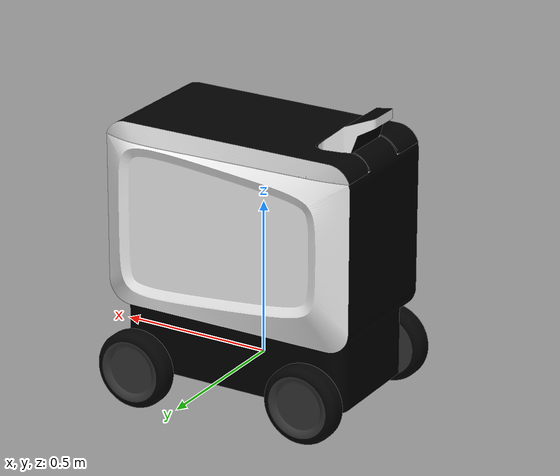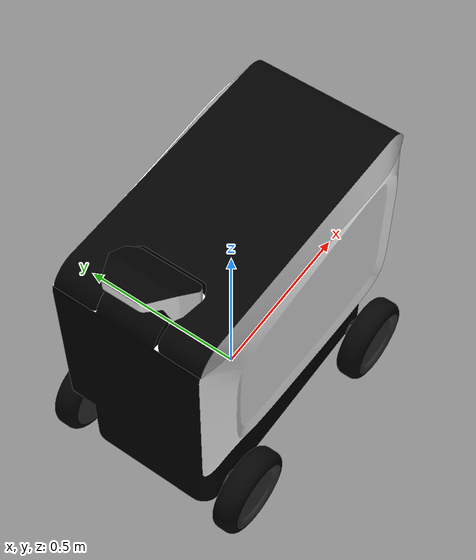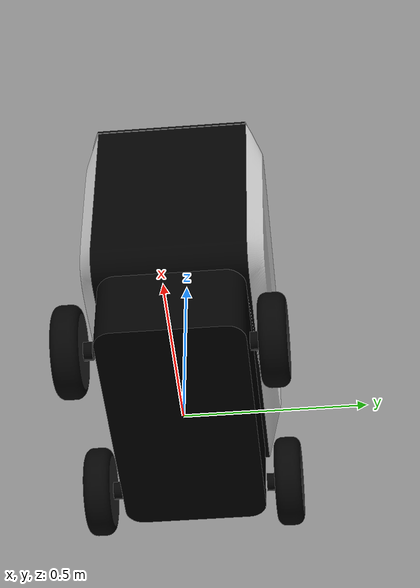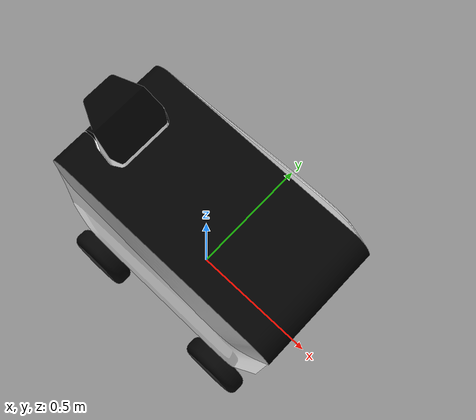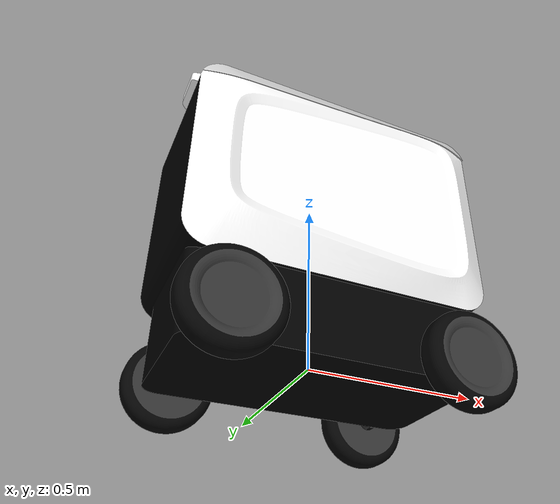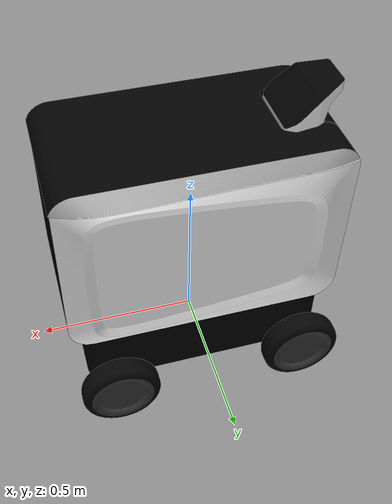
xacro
<?xml version="1.0"?>
<robot name="steer_bot" xmlns:xacro="http://wiki.ros.org/xacro">
  <!-- Include xacro for inertials, materials and wheels -->
  <xacro:include filename="$(find deliverybot_description)/urdf/wheel.xacro"/>

  <xacro:property name="robot_namespace" value="/steer_bot"/>

  <!-- Gazebo plugins -->
  <gazebo>
    <!-- Load ros_control plugin using the steer_bot_hardware_gazebo
    implementation of the hardware_interface::RobotHW -->
    <plugin name="gazebo_ros_control" filename="libgazebo_ros_control.so">
      <robotNamespace>${robot_namespace}</robotNamespace>
      <robotSimType>steer_bot_hardware_gazebo/SteerBotHardwareGazebo</robotSimType>
      <legacyModeNS>false</legacyModeNS>
    </plugin>
  </gazebo>

  <!-- Math constants -->
  <xacro:property name="deg_to_rad" value="0.01745329251994329577"/>

  <!-- Robot base dimensions -->
  <xacro:property name="base_length" value="0.85" />
  <xacro:property name="base_width" value="0.30" />
  <xacro:property name="base_height" value="0.75" />
  <xacro:property name="base_mass" value="72.3" />

  <!-- Wheel link dimensions -->
  <xacro:property name="wheel_radius" value="0.125" />
  <xacro:property name="wheel_thickness" value="0.1" />
  <xacro:property name="wheel_mass" value="3.5" />

  <!-- Steering link dimensions -->
  <xacro:property name="steer_radius" value="0.05" />
  <xacro:property name="steer_thickness" value="0.02" />
  <xacro:property name="steer_mass" value="1" />

  <!-- Axle positions -->
  <xacro:property name="axle_offset" value="0.125" />
  <xacro:property name="steer_offset" value="-0.15" />

  <!-- Base link -->
    <link name="base_link">
      <visual>
        <origin xyz="0 0 0.40" rpy="0 0 -1.57"/>
        <geometry>
          <mesh filename="package://deliverybot_description/models/EVA_Body.dae"/>
        </geometry>
      </visual>
      <collision>
        <origin xyz="0 0 0.40" rpy="0 0 -1.57"/>
        <geometry>
          <mesh filename="package://deliverybot_description/models/EVA_Body.dae"/>
        </geometry>
      </collision>
      <inertial>
        <origin xyz="0 0 0" rpy="0 0 0" />
        <mass value="64.3" />
        <inertia ixx="8.303" ixy="0" ixz="0" iyy="5.468" iyz="0.075" izz="6.02" />
      </inertial>
    </link>
  <!-- Front steer and rear wheel joints required for ackermann_steering_controller -->
    <xacro:front_steer
      name="front"
      parent="base"
      steer_radius="${steer_radius}"
      steer_thickness="${steer_thickness}"
      steer_mass="${steer_mass}"
      base_length="${base_length}"
      base_width="${base_width}"
      axle_offset="${axle_offset}"
      steer_height="${wheel_radius+steer_offset}">
    </xacro:front_steer>

    <xacro:rear_wheel
      name="rear"
      parent="base"
      wheel_radius="${wheel_radius/4}"
      wheel_thickness="${wheel_thickness/2}"
      wheel_mass="${wheel_mass/32}">
      <origin xyz="${-base_length/2+axle_offset} 0 0" rpy="${-90 * deg_to_rad} 0 0"/>
    </xacro:rear_wheel>

  <!-- Steerable front wheels -->
    <xacro:front_wheel_lr
      name="front_right"
      parent="base"
      reflect="-1"
      wheel_radius="${wheel_radius}"
      wheel_thickness="${wheel_thickness}"
      wheel_mass="${wheel_mass}"
      steer_radius="${steer_radius}"
      steer_thickness="${steer_thickness}"
      steer_mass="${steer_mass}"
      base_length="${base_length}"
      base_width="${base_width}"
      axle_offset="${axle_offset}"
      steer_height="${wheel_radius+steer_offset}"
      model_rotate="-1.57">
      <origin xyz="0 0 0" rpy="${-90 * deg_to_rad} 0 0"/>
    </xacro:front_wheel_lr>
    <xacro:front_wheel_lr
      name="front_left"
      parent="base"
      reflect="1"
      wheel_radius="${wheel_radius}"
      wheel_thickness="${wheel_thickness}"
      wheel_mass="${wheel_mass}"
      steer_radius="${steer_radius}"
      steer_thickness="${steer_thickness}"
      steer_mass="${steer_mass}"
      base_length="${base_length}"
      base_width="${base_width}"
      axle_offset="${axle_offset}"
      steer_height="${wheel_radius+steer_offset}"
      model_rotate="1.57">
      <origin xyz="0 0 0" rpy="${-90 * deg_to_rad} 0 0"/>
    </xacro:front_wheel_lr>

  <!-- Rear wheels -->
    <xacro:rear_wheel_lr
      name="rear_right"
      parent="base"
      wheel_radius="${wheel_radius}"
      wheel_thickness="${wheel_thickness}"
      wheel_mass="${wheel_mass}"
      model_rotate="-1.57">
      <origin xyz="${-base_length/2+axle_offset} ${-base_width/2-axle_offset} 0" rpy="${-90 * deg_to_rad} 0 0"/>
    </xacro:rear_wheel_lr>
    <xacro:rear_wheel_lr
      name="rear_left"
      parent="base"
      wheel_radius="${wheel_radius}"
      wheel_thickness="${wheel_thickness}"
      wheel_mass="${wheel_mass}"
      model_rotate="1.57">
      <origin xyz="${-base_length/2+axle_offset} ${+base_width/2+axle_offset} 0" rpy="${-90 * deg_to_rad} 0 0"/>
    </xacro:rear_wheel_lr>

  <!-- Colour -->
  <!-- Door Joint -->
  <xacro:door
    name="door"
    parent="base">
  </xacro:door>
</robot>

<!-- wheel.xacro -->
<robot name="wheel" xmlns:xacro="http://wiki.ros.org/xacro">
  <!-- Include xacro for materials and inertials -->
  <xacro:include filename="$(find steer_bot_description)/urdf/materials.xacro"/>
  <xacro:include filename="$(find steer_bot_description)/urdf/inertials.xacro"/>

  <!-- Properties -->
  <xacro:property name="steer_effort" value="10.0"/>
  <xacro:property name="steer_velocity" value="5.0"/>
  <xacro:property name="steer_limit_deg" value="45.0"/>

<!-- Bicycle model front steering link (required for steer_drive_controller) -->
  <xacro:macro name="front_steer"
    params="
      name
      parent
      steer_radius
      steer_thickness
      steer_mass
      base_length
      base_width
      axle_offset
      steer_height">
    <link name="${name}_steer_link">
      <visual>
        <origin xyz="0 0 0" rpy="0 0 0"/>
        <geometry>
          <cylinder radius="${steer_radius}" length="${steer_thickness}"/>
        </geometry>
        <material name="yellow" />
      </visual>
      <collision>
        <origin xyz="0 0 0" rpy="0 0 0"/>
        <geometry>
          <cylinder radius="${steer_radius}" length="${steer_thickness}"/>
        </geometry>
      </collision>
      <xacro:solid_cylinder_inertial
          rpy="0 0 0" xyz="0 0 0"
          mass="${steer_mass}"
          radius="${steer_radius}" length="${steer_thickness}" />
    </link>

    <joint name="${name}_steer_joint" type="revolute">
      <parent link="${parent}_link"/>
      <child link="${name}_steer_link"/>
      <origin xyz="${base_length/2-axle_offset} 0 ${steer_height}" rpy="0 0 0"/>
      <axis xyz="0 0 1"/>
      <limit effort="${steer_effort}"
             lower="${-180.0 * deg_to_rad}" upper="${180.0 * deg_to_rad}"
             velocity="${steer_velocity}"/>
    </joint>

    <transmission name="${name}_steer_joint_trans">
      <type>transmission_interface/SimpleTransmission</type>
      <actuator name="${name}_steer_joint_motor">
        <mechanicalReduction>1</mechanicalReduction>
        <hardwareInterface>hardware_interface/PositionJointInterface</hardwareInterface>
      </actuator>
      <joint name="${name}_steer_joint">
        <hardwareInterface>hardware_interface/PositionJointInterface</hardwareInterface>
      </joint>
    </transmission>

    <gazebo reference="${name}_steer_link">
      <material>Gazebo/Yellow</material>
    </gazebo>
  </xacro:macro>

  <!-- Car steering model front (steerable) wheel links (left/right) -->
  <xacro:macro name="front_wheel_lr"
    params="
      name
      parent
      reflect
      wheel_radius
      wheel_thickness
      wheel_mass
      steer_radius
      steer_thickness
      steer_mass
      base_length
      base_width
      axle_offset
      steer_height
      model_rotate
      *origin">
    <link name="${name}_steer_link">

      <xacro:solid_cylinder_inertial
          rpy="0 0 0" xyz="0 0 0"
          mass="${steer_mass}"
          radius="${steer_radius}" length="${steer_thickness}" />
    </link>

    <joint name="${name}_steer_joint" type="revolute">
      <parent link="${parent}_link"/>
      <child link="${name}_steer_link"/>
      <origin xyz="${base_length/2-axle_offset} ${reflect*(base_width/2+axle_offset)} ${steer_height}" rpy="0 0 0"/>
      <axis xyz="0 0 1"/>
      <limit effort="${steer_effort}"
             lower="${steer_limit_deg * deg_to_rad * -1.0}" upper="${steer_limit_deg * deg_to_rad}"
             velocity="${steer_velocity}"/>
    </joint>

    <link name="${name}_wheel_link">
      <visual>
        <origin xyz="0 0 0" rpy="0 ${model_rotate} 1.57"/>
        <geometry>
          <mesh filename="package://deliverybot_description/models/EVA_Wheel.dae"/>
        </geometry>
      </visual>
      <collision>
        <origin xyz="0 0 0" rpy="0 ${model_rotate} 1.57"/>
        <geometry>
          <mesh filename="package://deliverybot_description/models/EVA_Wheel.dae"/>
        </geometry>
      </collision>
      <inertial>
        <origin xyz="0 0 0" rpy="0 0 0" />
        <mass value="3.512" />
        <inertia ixx="0.02665" ixy="0" ixz="0" iyy="0.0148" iyz="0" izz="0.01479" />
      </inertial>
    </link>

    <joint name="${name}_wheel_joint" type="continuous">
      <parent link="${name}_steer_link"/>
      <child link="${name}_wheel_link"/>
      <xacro:insert_block name="origin"/>
      <axis xyz="0 0 1"/>
    </joint>

    <transmission name="${name}_steer_joint_trans">
      <type>transmission_interface/SimpleTransmission</type>
      <actuator name="${name}_steer_joint_motor">
        <mechanicalReduction>1</mechanicalReduction>
        <hardwareInterface>hardware_interface/PositionJointInterface</hardwareInterface>
      </actuator>
      <joint name="${name}_steer_joint">
        <hardwareInterface>hardware_interface/PositionJointInterface</hardwareInterface>
      </joint>
    </transmission>

    <transmission name="${name}_wheel_joint_trans">
      <type>transmission_interface/SimpleTransmission</type>
      <actuator name="${name}_wheel_joint_motor">
        <mechanicalReduction>1</mechanicalReduction>
        <hardwareInterface>hardware_interface/VelocityJointInterface</hardwareInterface>
      </actuator>
      <joint name="${name}_wheel_joint">
        <hardwareInterface>hardware_interface/VelocityJointInterface</hardwareInterface>
      </joint>
    </transmission>

    <gazebo reference="${name}_steer_link">
      <material>Gazebo/Black</material>
      <mu1 value="2.0" />
      <mu2 value="2.0" />
      <kp value="10000000.0" />
      <kd value="1.0" />
      <fdir value="0 1 0" />
    </gazebo>

    <gazebo reference="${name}_wheel_link">
      <mu1 value="2.0"/>
      <mu2 value="2.0"/>
      <kp  value="10000000.0" />
      <kd  value="1.0" />
      <fdir1 value="0 1 0"/>
    </gazebo>
  </xacro:macro>

  <!-- Car steering model rear wheel links (left/right) -->
  <xacro:macro name="rear_wheel_lr"
    params="
      name
      parent
      wheel_radius
      wheel_thickness
      wheel_mass
      model_rotate
      *origin">
    <link name="${name}_wheel_link">
      <visual>
        <origin xyz="0 0 0" rpy="0 ${model_rotate} 1.57"/>
        <geometry>
          <mesh filename="package://deliverybot_description/models/EVA_Wheel.dae"/>
        </geometry>
      </visual>
      <collision>
        <origin xyz="0 0 0" rpy="0 ${model_rotate} 0"/>
        <geometry>
          <mesh filename="package://deliverybot_description/models/EVA_Wheel.dae"/>
        </geometry>
      </collision>
      <inertial>
        <origin xyz="0 0 0" rpy="0 0 0" />
        <mass value="3.512" />
        <inertia ixx="0.02665" ixy="0" ixz="0" iyy="0.0148" iyz="0" izz="0.01479" />
      </inertial>
    </link>

    <joint name="${name}_wheel_joint" type="continuous">
      <parent link="${parent}_link"/>
      <child link="${name}_wheel_link"/>
      <xacro:insert_block name="origin"/>
      <axis xyz="0 0 1"/>
    </joint>

    <transmission name="${name}_wheel_joint_trans">
      <type>transmission_interface/SimpleTransmission</type>
      <actuator name="${name}_wheel_joint_motor">
        <mechanicalReduction>1</mechanicalReduction>
        <hardwareInterface>hardware_interface/VelocityJointInterface</hardwareInterface>
      </actuator>
      <joint name="${name}_wheel_joint">
        <hardwareInterface>hardware_interface/VelocityJointInterface</hardwareInterface>
      </joint>
    </transmission>

    <gazebo reference="${name}_wheel_link">
      <mu1 value="2.0"/>
      <mu2 value="2.0"/>
      <kp  value="10000000.0" />
      <kd  value="1.0" />
      <fdir1 value="0 1 0"/>
    </gazebo>
  </xacro:macro>

    <!-- Bicycle model rear wheel link (required for steer_drive_controller) -->
  <xacro:macro name="rear_wheel"
    params="
      name
      parent
      wheel_radius
      wheel_thickness
      wheel_mass
      *origin">
    <link name="${name}_wheel_link">
      <visual>
        <origin xyz="0 0 0" rpy="0 0 0"/>
        <geometry>
          <cylinder radius="${wheel_radius}" length="${wheel_thickness}"/>
        </geometry>
      </visual>
      <xacro:solid_cylinder_inertial
          rpy="0 0 0" xyz="0 0 0"
          mass="${wheel_mass}"
          radius="${wheel_radius}" length="${wheel_thickness}" />
    </link>

    <joint name="${name}_wheel_joint" type="continuous">
      <parent link="${parent}_link"/>
      <child link="${name}_wheel_link"/>
      <xacro:insert_block name="origin"/>
      <axis xyz="0 0 1"/>
    </joint>

    <transmission name="${name}_wheel_joint_trans">
      <type>transmission_interface/SimpleTransmission</type>
      <actuator name="${name}_wheel_joint_motor">
        <mechanicalReduction>1</mechanicalReduction>
        <hardwareInterface>hardware_interface/VelocityJointInterface</hardwareInterface>
      </actuator>
      <joint name="${name}_wheel_joint">
        <hardwareInterface>hardware_interface/VelocityJointInterface</hardwareInterface>
      </joint>
    </transmission>

    <gazebo reference="${name}_wheel_link">
    </gazebo>
  </xacro:macro>

  <!-- Bicycle model front wheel link (passive - no transmission) -->
  <xacro:macro name="front_wheel"
    params="
      name
      parent
      wheel_radius
      wheel_thickness
      wheel_mass
      *origin">
    <link name="${name}_wheel_link">
      <visual>
        <origin xyz="0 0 0" rpy="0 0 0"/>
        <geometry>
          <cylinder radius="${wheel_radius}" length="${wheel_thickness}"/>
        </geometry>
        <material name="yellow" />
      </visual>
      <collision>
        <origin xyz="0 0 0" rpy="0 0 0"/>
        <geometry>
          <cylinder radius="${wheel_radius}" length="${wheel_thickness}"/>
        </geometry>
      </collision>
      <xacro:solid_cylinder_inertial
          rpy="0 0 0" xyz="0 0 0"
          mass="${wheel_mass}"
          radius="${wheel_radius}" length="${wheel_thickness}" />
    </link>

    <joint name="${name}_wheel_joint" type="continuous">
      <parent link="${parent}_link"/>
      <child link="${name}_wheel_link"/>
      <xacro:insert_block name="origin"/>
      <axis xyz="0 0 1"/>
    </joint>

    <gazebo reference="${name}_wheel_link">
      <material>Gazebo/Yellow</material>
    </gazebo>

    <gazebo reference="${name}_wheel_joint">
      <provideFeedback>true</provideFeedback>
    </gazebo>
  </xacro:macro>
  <xacro:macro name="door"
  params="
  name
  parent">
    <link name="${name}_link">
      <visual>
        <geometry>
          <mesh filename="package://deliverybot_description/models/EVA_Lid.dae" />
        </geometry>
        <origin rpy="0 0 -1.57" xyz="0.425 0 0" />
      </visual>
      <collision>
        <origin rpy="0 0 -1.57" xyz="0.425 0 0" />
        <geometry>
          <mesh filename="package://deliverybot_description/models/EVA_Lid.dae" />
        </geometry>
      </collision>
      <inertial>
        <origin rpy="0 0 -1.57" xyz="0 0 0" />
        <mass value="8" />
        <inertia ixx="0.4381" ixy="0" ixz="0" iyy="0.1637" iyz="0.005" izz="0.6" />
      </inertial>
    </link>

    <joint name="${name}_joint" type="revolute">
      <limit lower="0" upper="-1.57" effort="100" velocity="0.500" />
      <origin rpy="0 0 0" xyz="-0.4375 0 .725" />
      <parent link="${parent}_link" />
      <child link="${name}_link" />
      <axis xyz="0 1 0" rpy="0 0 0" />
    </joint>

    <transmission name="${name}_hinge_trans">
      <type>transmission_interface/SimpleTransmission</type>
      <actuator name="${name}_motor">
        <mechanicalReduction>1</mechanicalReduction>
      </actuator>
      <joint name="${name}_joint">
        <hardwareInterface>hardware_interface/EffortJointInterface</hardwareInterface>
      </joint>
    </transmission>
  </xacro:macro>
</robot>
